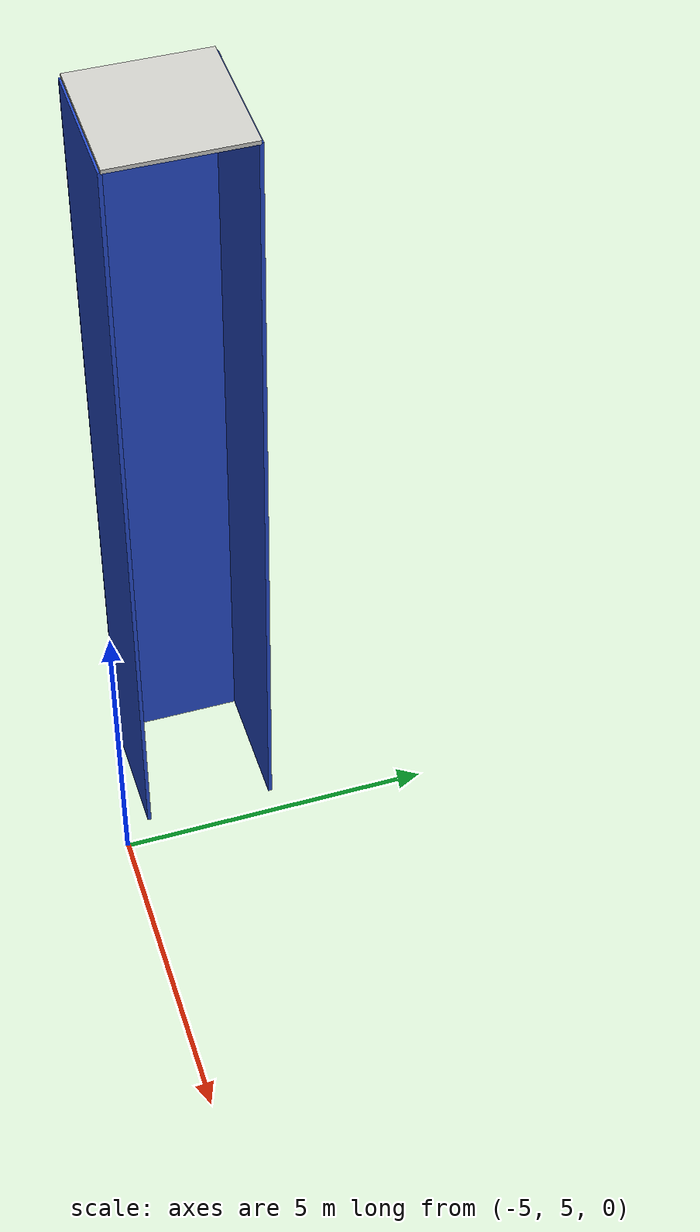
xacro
<?xml version="1.0" ?>
<robot name="elevator_enclosure" xmlns:xacro="http://ros.org/wiki/xacro" xmlns:xi="http://www.w3.org/2001/XInclude" xmlns:gazebo="http://playerstage.sourceforge.net/gazebo/xmlschema/#gz" xmlns:model="http://playerstage.sourceforge.net/gazebo/xmlschema/#model" xmlns:sensor="http://playerstage.sourceforge.net/gazebo/xmlschema/#sensor" xmlns:body="http://playerstage.sourceforge.net/gazebo/xmlschema/#body" xmlns:geom="http://playerstage.sourceforge.net/gazebo/xmlschema/#geom" xmlns:joint="http://playerstage.sourceforge.net/gazebo/xmlschema/#joint" xmlns:interface="http://playerstage.sourceforge.net/gazebo/xmlschema/#interface" xmlns:rendering="http://playerstage.sourceforge.net/gazebo/xmlschema/#rendering" xmlns:renderable="http://playerstage.sourceforge.net/gazebo/xmlschema/#renderable" xmlns:controller="http://playerstage.sourceforge.net/gazebo/xmlschema/#controller" xmlns:physics="http://playerstage.sourceforge.net/gazebo/xmlschema/#physics">
    <property name="x_position" value="-1.43" />
    <property name="y_position" value="11.5" />
    <property name="x_world_offset" value="-5" />
    <property name="y_world_offset" value="-5" />
    <property name="gap_between_floors" value="7" />
    <link name="world" />
    <joint name="world_eeblock" type="fixed">
        <axis xyz="0 0 1" />
        <parent link="world" />
        <child link="elevator_enclosure_block" />
        <origin rpy="0 0 -1.57" xyz="${x_position + x_world_offset + 0}  ${y_position + y_world_offset + 0} 0" />
    </joint>
    <joint name="eeblock_eeleft" type="fixed">
        <axis xyz="0 0 1" />
        <parent link="elevator_enclosure_block" />
        <child link="elevator_enclosure_left" />
        <origin rpy="0 0 1.57" xyz="-1.033 0 0" />
    </joint>
    <joint name="eeblock_eeright" type="fixed">
        <axis xyz="0 0 1" />
        <origin rpy="0 0 1.57" xyz="1.033 0 0" />
        <parent link="elevator_enclosure_block" />
        <child link="elevator_enclosure_right" />
    </joint>
    <joint name="eeblock_eeback" type="fixed">
        <axis xyz="0 0 1" />
        <origin rpy="0 0 0" xyz="0 -1.033 0" />
        <parent link="elevator_enclosure_block" />
        <child link="elevator_enclosure_back" />
    </joint>
    <joint name="eblock_etop" type="fixed">
        <axis xyz="0 0 1" />
        <origin rpy="0 0 0" xyz="0 0 ${6.001 + gap_between_floors}" />
        <parent link="elevator_enclosure_block" />
        <child link="elevator_enclosure_top" />
    </joint>
    <link name="elevator_enclosure_block">
        <inertial>
            <origin xyz="0 0 0" rpy="0 0 0" />
            <mass value="10.0" />
            <inertia ixx="1.0" ixy="0.0" ixz="0.0" iyy="1.0" iyz="0.0" izz="1.0" />
        </inertial>
        <visual>
            <origin xyz="0 0 0" rpy="0 0 0" />
            <geometry>
                <box size="0 0 0" />
            </geometry>
        </visual>
        <collision>
            <origin xyz="0 0 0" rpy="0 0 0" />
            <geometry>
                <box size="0 0 0" />
            </geometry>
        </collision>
    </link>
    <gazebo reference="elevator_enclosure_block">
        <material>Gazebo/BlueTransparent</material>
        <dampingFactor>.005</dampingFactor>
        <selfCollide>false</selfCollide>
        <laserRetro>2000</laserRetro>
        <turnGravityOff>true</turnGravityOff>
    </gazebo>
    <link name="elevator_enclosure_left">
        <inertial>
            <origin xyz="0 0 0" rpy="0 0 0" />
            <mass value="10.0" />
            <inertia ixx="1.0" ixy="0.0" ixz="0.0" iyy="1.0" iyz="0.0" izz="1.0" />
        </inertial>
        <visual>
            <origin xyz="0 0 ${6/2 + gap_between_floors/2}" rpy="0 0 0" />
            <geometry>
                <box size="2.06 0.06 ${6 + gap_between_floors}" />
            </geometry>
        </visual>
        <collision>
            <origin xyz="0 0 ${6/2 + gap_between_floors/2}" rpy="0 0 0" />
            <geometry>
                <box size="2.06 0.06 ${6 + gap_between_floors}" />
            </geometry>
        </collision>
    </link>
    <gazebo reference="elevator_enclosure_left">
        <material>Gazebo/BlueTransparent</material>
        <dampingFactor>.005</dampingFactor>
        <selfCollide>false</selfCollide>
        <laserRetro>2000</laserRetro>
        <turnGravityOff>true</turnGravityOff>
    </gazebo>
    <link name="elevator_enclosure_right">
        <inertial>
            <origin xyz="0 0 0" rpy="0 0 0" />
            <mass value="10.0" />
            <inertia ixx="1.0" ixy="0.0" ixz="0.0" iyy="1.0" iyz="0.0" izz="1.0" />
        </inertial>
        <visual>
            <origin xyz="0 0 ${6/2 + gap_between_floors/2}" rpy="0 0 0" />
            <geometry>
                <box size="2.06 0.06 ${6 + gap_between_floors}" />
            </geometry>
        </visual>
        <collision>
            <origin xyz="0 0 ${6/2 + gap_between_floors/2}" rpy="0 0 0" />
            <geometry>
                <box size="2.06 0.06 ${6 + gap_between_floors}" />
            </geometry>
        </collision>
    </link>
    <gazebo reference="elevator_enclosure_right">
        <material>Gazebo/BlueTransparent</material>
        <dampingFactor>.005</dampingFactor>
        <selfCollide>false</selfCollide>
        <laserRetro>2000</laserRetro>
        <turnGravityOff>true</turnGravityOff>
    </gazebo>
    <link name="elevator_enclosure_back">
        <inertial>
            <origin xyz="0 0 0" rpy="0 0 0" />
            <mass value="10.0" />
            <inertia ixx="1.0" ixy="0.0" ixz="0.0" iyy="1.0" iyz="0.0" izz="1.0" />
        </inertial>
        <visual>
            <origin xyz="0 0 ${6/2 + gap_between_floors/2}" rpy="0 0 0" />
            <geometry>
                <box size="2.12 0.06 ${6 + gap_between_floors}" />
            </geometry>
        </visual>
        <collision>
            <origin xyz="0 0 ${6/2 + gap_between_floors/2}" rpy="0 0 0" />
            <geometry>
                <box size="2.12 0.06 ${6 + gap_between_floors}" />
            </geometry>
        </collision>
    </link>
    <gazebo reference="elevator_enclosure_back">
        <material>Gazebo/BlueTransparent</material>
        <dampingFactor>.005</dampingFactor>
        <selfCollide>false</selfCollide>
        <laserRetro>2000</laserRetro>
        <turnGravityOff>true</turnGravityOff>
    </gazebo>
    <link name="elevator_enclosure_top">
        <inertial>
            <origin xyz="0 0 0" rpy="0 0 0" />
            <mass value="10.0" />
            <inertia ixx="1.0" ixy="0.0" ixz="0.0" iyy="1.0" iyz="0.0" izz="1.0" />
        </inertial>
        <visual>
            <origin xyz="0 0 0.03" rpy="0 0 0" />
            <geometry>
                <box size="2.06 2.12 .06" />
            </geometry>
        </visual>
        <collision>
            <origin xyz="0 0 0.03" rpy="0 0 0" />
            <geometry>
                <box size="2.06 2.12 .06" />
            </geometry>
        </collision>
    </link>
    <gazebo reference="elevator_enclosure_top">
        <material>Gazebo/CeilingTiled</material>
        <dampingFactor>.005</dampingFactor>
        <selfCollide>false</selfCollide>
        <laserRetro>2000</laserRetro>
        <turnGravityOff>true</turnGravityOff>
    </gazebo>
</robot>
